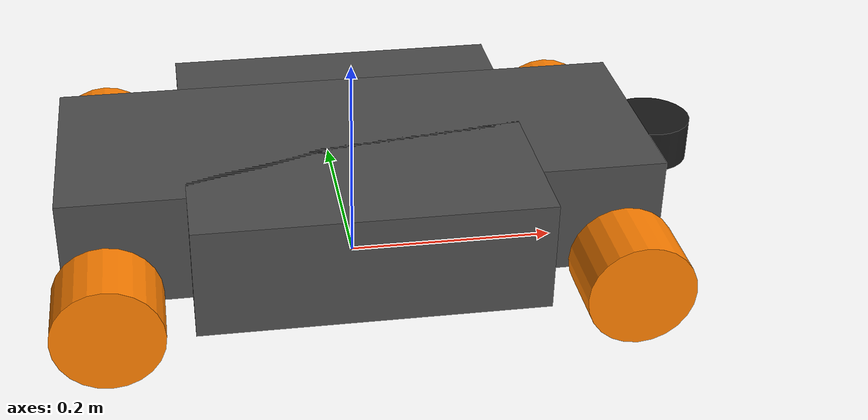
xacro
<?xml version="1.0"?>
<robot name="caramelo_real" xmlns:xacro="http://ros.org/wiki/xacro">

  <!-- Propriedades -->
  <xacro:property name="M_PI" value="3.1415926535897931" />

  <!-- Argumentos -->
  <xacro:arg name="robot_name" default="caramelo"/>
  <xacro:arg name="prefix" default=""/>

  <!-- Argumento para Gazebo Ignition ou Gazebo Classic -->
  <xacro:arg name="is_ignition" default="true"/>

  <!-- Inclusões -->
  <xacro:include filename="$(find caramelo_description)/URDF/robot_base.xacro" />
  <xacro:include filename="$(find caramelo_description)/URDF/robot_mecanum_wheel.xacro" />
  <xacro:include filename="$(find caramelo_description)/URDF/lidar_sensor.xacro" />

  <!-- Base -->
  <xacro:robot_base
    prefix="$(arg prefix)"/>

  <!-- Rodas mecanum -->
  <xacro:mecanum_wheel
    prefix="$(arg prefix)"
    side="front_left"
    x_reflect="1"
    y_reflect="1"/>

  <xacro:mecanum_wheel
    prefix="$(arg prefix)"
    side="front_right"
    x_reflect="1"
    y_reflect="-1"/>

  <xacro:mecanum_wheel
    prefix="$(arg prefix)"
    side="back_left"
    x_reflect="-1"
    y_reflect="1"/>

  <xacro:mecanum_wheel
    prefix="$(arg prefix)"
    side="back_right"
    x_reflect="-1"
    y_reflect="-1"/>

  <!-- RPLidar S2 - Posicionado na face frontal do robô -->
  <xacro:lidar_sensor
    prefix="$(arg prefix)"
    parent="base_link"
    frame_id="laser_frame"
    xyz_offset="0.292 0 0.077"
    rpy_offset="0 0 ${-M_PI}"
    mesh_xyz_offset="0 0 0"
    mesh_rpy_offset="0 0 0"
    topic_name="scan"/>

  <!-- ROS 2 Control Configuration for REAL HARDWARE -->
  <ros2_control name="caramelo_real_hardware" type="system">

    <!-- Hardware Plugin (Mock para hardware real - será substituído pelo nosso nó Python) -->
    <hardware>
      <plugin>mock_components/GenericSystem</plugin>
      <param name="mock_sensor_commands">false</param>
      <param name="state_following_offset">0.0</param>
    </hardware>

    <!-- Joint para roda dianteira esquerda -->
    <joint name="front_left_wheel_joint">
      <command_interface name="velocity">
        <param name="min">-30.0</param>
        <param name="max">30.0</param>
      </command_interface>
      <state_interface name="position"/>
      <state_interface name="velocity"/>
    </joint>

    <!-- Joint para roda dianteira direita -->
    <joint name="front_right_wheel_joint">
      <command_interface name="velocity">
        <param name="min">-30.0</param>
        <param name="max">30.0</param>
      </command_interface>
      <state_interface name="position"/>
      <state_interface name="velocity"/>
    </joint>

    <!-- Joint para roda traseira esquerda -->
    <joint name="back_left_wheel_joint">
      <command_interface name="velocity">
        <param name="min">-30.0</param>
        <param name="max">30.0</param>
      </command_interface>
      <state_interface name="position"/>
      <state_interface name="velocity"/>
    </joint>

    <!-- Joint para roda traseira direita -->
    <joint name="back_right_wheel_joint">
      <command_interface name="velocity">
        <param name="min">-30.0</param>
        <param name="max">30.0</param>
      </command_interface>
      <state_interface name="position"/>
      <state_interface name="velocity"/>
    </joint>

  </ros2_control>

</robot>

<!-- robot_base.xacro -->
<robot xmlns:xacro="http://www.ros.org/wiki/xacro">

  <!-- Propriedades da base do robô Caramelo -->
  <xacro:property name="mass" value="22.0"/>
  <xacro:property name="width_vertical" value="0.550"/>   <!-- Comprimento -->
  <xacro:property name="depth_vertical" value="0.210"/>   <!-- Largura -->
  <xacro:property name="width_horizontal" value="0.330"/>   <!-- Comprimento -->
  <xacro:property name="depth_horizontal" value="0.320"/>   <!-- Largura -->
  <xacro:property name="height" value="0.105"/>  <!-- Altura -->
  <xacro:property name="wheel_radius" value="0.05"/>

  <xacro:macro name="robot_base" params="prefix">
    <!-- BAsefootprint link -->
    <link name="${prefix}base_footprint"/>

    <!-- Link da base (base_link agora toca o chão) -->
    <link name="${prefix}base_link">

      <visual>
        <origin xyz="0 0 ${height/2.0}" rpy="0 0 0"/>
        <geometry>
          <box size="${width_vertical} ${depth_vertical} ${height}"/>
        </geometry>
        <material name="darkgray">
          <color rgba="0.3 0.3 0.3 1.0"/>
        </material>
      </visual>
      <visual>
        <origin xyz="0 0 ${height/2.0}" rpy="0 0 0"/>
        <geometry>
          <box size="${depth_horizontal} ${width_horizontal} ${height}"/>
        </geometry>
        <material name="darkgray">
          <color rgba="0.3 0.3 0.3 1.0"/>
        </material>
      </visual>

      <collision>
        <origin xyz="0 0 ${height/2.0}" rpy="0 0 0"/>
        <geometry>
          <box size="${width_vertical} ${depth_vertical} ${height}"/>
        </geometry>
      </collision>

      <inertial>
        <mass value="${mass}"/>
        <origin xyz="0 0 ${height/2.0}" rpy="0 0 0"/>
        <inertia
          ixx="${1/12.0 * mass * (height*height + depth_vertical*depth_vertical)}"
          iyy="${1/12.0 * mass * (width_vertical*width_vertical + depth_vertical*depth_vertical)}"
          izz="${1/12.0 * mass * (width_vertical*width_vertical + height*height)}"
          ixy="0.0" ixz="0.0" iyz="0.0"/>
      </inertial>
    </link>

    <!-- Joint com o footprint (ajustado para as dimensões do Caramelo) -->
    <joint name="${prefix}base_joint" type="fixed">
      <parent link="${prefix}base_footprint"/>
      <child link="${prefix}base_link"/>
      <origin xyz="0 0 ${wheel_radius - 0.02}" rpy="0 0 0"/>
    </joint>

    <!-- Aparência no Gazebo -->
    <gazebo reference="${prefix}base_link">
      <visual>
        <material>
          <ambient>0.3 0.3 0.3 1.0</ambient>
          <diffuse>0.3 0.3 0.3 1.0</diffuse>
          <specular>0.1 0.1 0.1 1.0</specular>
          <emissive>0.0 0.0 0.0 1.0</emissive>
        </material>
      </visual>
    </gazebo>

  </xacro:macro>

</robot>

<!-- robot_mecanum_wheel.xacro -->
<robot xmlns:xacro="http://www.ros.org/wiki/xacro">

  <!-- Especificações das rodas mecanum do robô Caramelo -->
  <xacro:property name="wheel_radius" value="0.05" />
  <xacro:property name="wheel_width" value="0.069" />
  <xacro:property name="wheel_mass" value="3.0" />
  <xacro:property name="wheel_separation" value="0.310" /> <!-- Distância entre as rodas 21 + 3 + 7 -->
  <xacro:property name="wheel_base" value="0.470" />

  <xacro:macro name="mecanum_wheel" params="prefix side x_reflect y_reflect">
    <link name="${prefix}${side}_wheel_link">
      <!-- Geometria visual: roda como cilindro -->
      <visual>
        <origin xyz="0 0 0" rpy="${pi/2} 0 0"/>
        <geometry>
          <cylinder radius="${wheel_radius}" length="${wheel_width}"/>
        </geometry>
        <material name="orange">
          <color rgba="1.0 0.5 0.0 1.0"/>
        </material>
      </visual>

      <!-- Geometria de colisão: cilindro simples para otimização de performance -->
      <collision>
        <origin xyz="0 0 0" rpy="${pi/2} 0 0"/>
        <geometry>
          <cylinder radius="${wheel_radius}" length="${wheel_width}"/>
        </geometry>
      </collision>

      <!-- Propriedades inerciais baseadas no cilindro -->
      <inertial>
        <origin xyz="0 0 0" rpy="0 0 0"/>
        <mass value="${wheel_mass}"/>
        <inertia
          ixx="${(wheel_mass/12.0) * (3*wheel_radius*wheel_radius + wheel_width*wheel_width)}" ixy="0" ixz="0"
          iyy="${(wheel_mass/2.0) * (wheel_radius*wheel_radius)}" iyz="0"
          izz="${(wheel_mass/12.0) * (3*wheel_radius*wheel_radius + wheel_width*wheel_width)}"/>
      </inertial>
    </link>

    <!-- Joint da roda: rotação contínua em torno do eixo Y -->
    <joint name="${prefix}${side}_wheel_joint" type="continuous">
      <axis xyz="0 1 0"/>
      <parent link="${prefix}base_link"/>
      <child link="${prefix}${side}_wheel_link"/>
      <origin xyz="${x_reflect*(wheel_base/2)} ${y_reflect*(wheel_separation/2)} 0.02" rpy="0 0 0"/>
    </joint>

    <!-- Configurações específicas do Gazebo para as rodas mecanum -->
    <gazebo reference="${prefix}${side}_wheel_link">
      <surface>
        <friction>
          <ode>
              <mu>1.0</mu>
              <mu2>0.0</mu2>
          </ode>
        </friction>
      </surface>
      <visual>
          <material>
              <ambient>1.0 0.5 0.0 1.0</ambient>
              <diffuse>1.0 0.5 0.0 1.0</diffuse>
              <specular>0.2 0.2 0.2 1.0</specular>
              <emissive>0.0 0.0 0.0 0.0</emissive>
          </material>
      </visual>
  </gazebo>

  </xacro:macro>
</robot>

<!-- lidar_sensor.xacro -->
<robot xmlns:xacro="http://www.ros.org/wiki/xacro">
  <xacro:property name="M_PI" value="3.1415926535897931" />

  <xacro:macro name="lidar_sensor" params="
    prefix:=''
    parent:='base_link'
    frame_id:='laser_frame'
    xyz_offset:='0 0 0'
    rpy_offset:='0 0 0'
    mesh_xyz_offset:='0 0 0'
    mesh_rpy_offset:='${-M_PI/2} 0 0'
    mesh_scale:='0.001 0.001 0.001'
    collision_xyz_offset:='0 0 0'
    collision_rpy_offset:='0 0 0'
    inertial_xyz_offset:='0 0 0'
    inertial_rpy_offset:='0 0 0'
    lidar_width:=0.077
    lidar_height:=0.0398
    mass:=0.185
    material_name:='rplidar_black'
    material_color:='0.1 0.1 0.1 1'
    gazebo_material_ambient:='0.1 0.1 0.1 1'
    gazebo_material_diffuse:='0.1 0.1 0.1 1'
    gazebo_material_specular:='0.1 0.1 0.1 1'
    update_rate:=10
    ray_count:=720
    min_angle:='-3.14159'
    max_angle:='3.14159'
    min_range:='0.20'
    max_range:='30.0'
    range_resolution:='0.013'
    topic_name:='scan'
    always_on:=true
    visualize:=false
    enable_collision:=false">

    <xacro:property name="radius" value="${lidar_width/2}" />
    <xacro:property name="ixx_iyy" value="${(mass/12) * (3 * radius * radius + lidar_height * lidar_height)}" />
    <xacro:property name="izz" value="${(mass/2) * (radius * radius)}" />

    <link name="${prefix}${frame_id}">
      <visual>
        <origin xyz="${mesh_xyz_offset}" rpy="${mesh_rpy_offset}"/>
        <geometry>
          <cylinder radius="${lidar_width/2}" length="${lidar_height}"/>
        </geometry>
        <material name="${material_name}">
          <color rgba="${material_color}"/>
        </material>
      </visual>

      <xacro:if value="${enable_collision}">
        <collision>
          <origin xyz="${collision_xyz_offset}" rpy="${collision_rpy_offset}"/>
          <geometry>
            <cylinder radius="${lidar_width/2}" length="${lidar_height}"/>
          </geometry>
        </collision>
      </xacro:if>

      <inertial>
        <mass value="${mass}" />
        <origin xyz="${inertial_xyz_offset}" rpy="${inertial_rpy_offset}"/>
        <inertia
          ixx="${ixx_iyy}"
          ixy="0.0"
          ixz="0.0"
          iyy="${ixx_iyy}"
          iyz="0.0"
          izz="${izz}" />
      </inertial>
    </link>

    <joint name="${prefix}${frame_id}_joint" type="fixed">
      <parent link="${prefix}${parent}"/>
      <child link="${prefix}${frame_id}" />
      <origin xyz="${xyz_offset}" rpy="${rpy_offset}"/>
    </joint>

    <gazebo reference="${prefix}${frame_id}">
      <material>
        <ambient>${gazebo_material_ambient}</ambient>
        <diffuse>${gazebo_material_diffuse}</diffuse>
        <specular>${gazebo_material_specular}</specular>
      </material>
      <sensor name="${prefix}lidar_sensor" type="gpu_lidar">
        <topic>${topic_name}</topic>
        <update_rate>${update_rate}</update_rate>
        <always_on>${always_on}</always_on>
        <visualize>${visualize}</visualize>
        <ray>
          <scan>
            <horizontal>
              <samples>${ray_count}</samples>
              <resolution>1</resolution>
              <min_angle>${min_angle}</min_angle>
              <max_angle>${max_angle}</max_angle>
            </horizontal>
            <vertical>
              <samples>1</samples>
              <resolution>1</resolution>
              <min_angle>0</min_angle>
              <max_angle>0</max_angle>
            </vertical>
          </scan>
          <range>
            <min>${min_range}</min>
            <max>${max_range}</max>
            <resolution>${range_resolution}</resolution>
          </range>
        </ray>
        <gz_frame_id>${prefix}${frame_id}</gz_frame_id>
      </sensor>
    </gazebo>
  </xacro:macro>
</robot>
